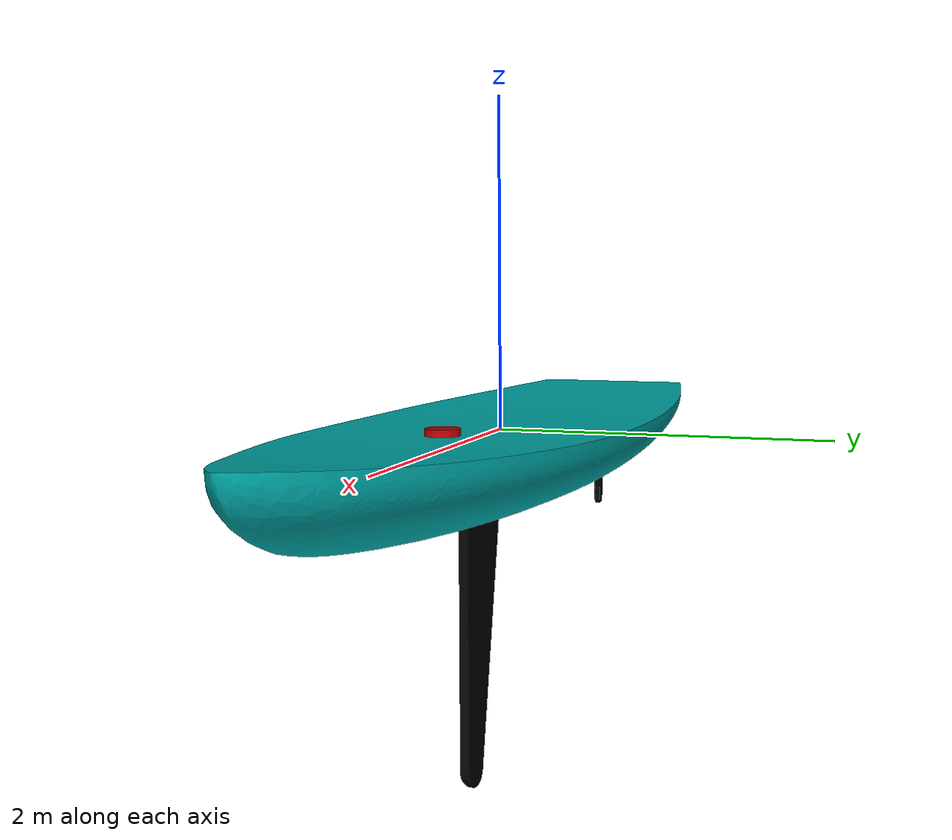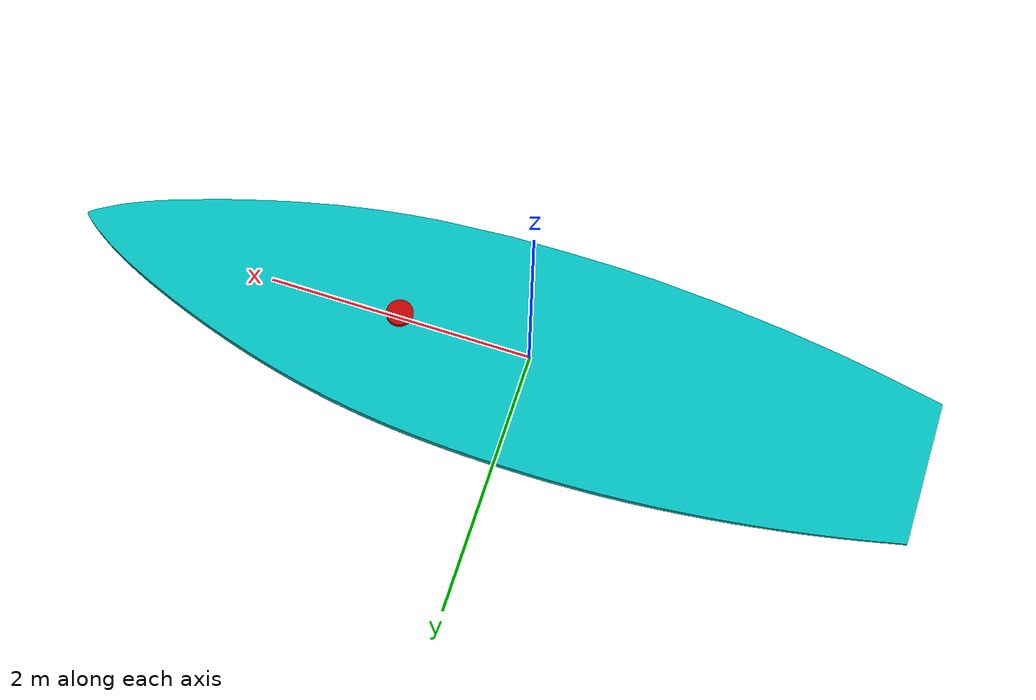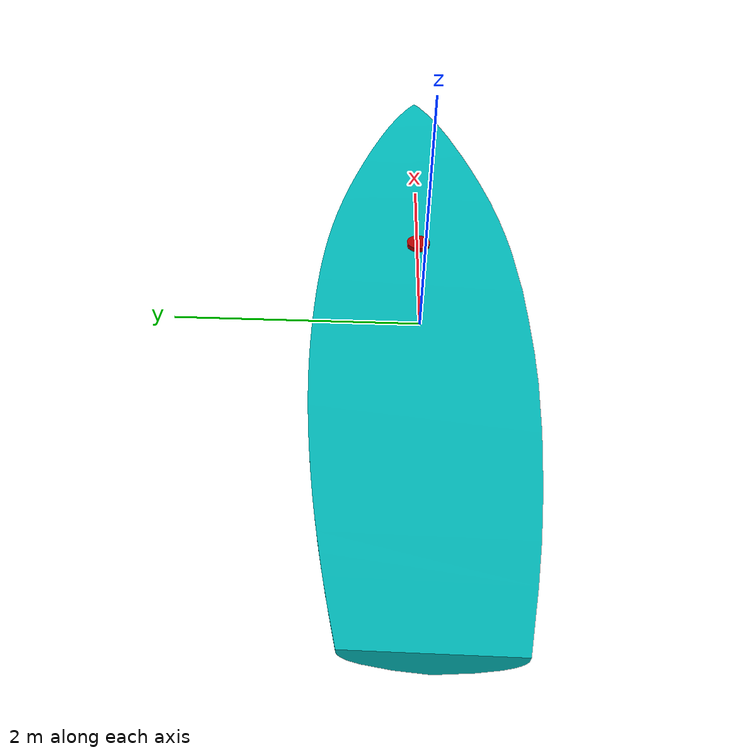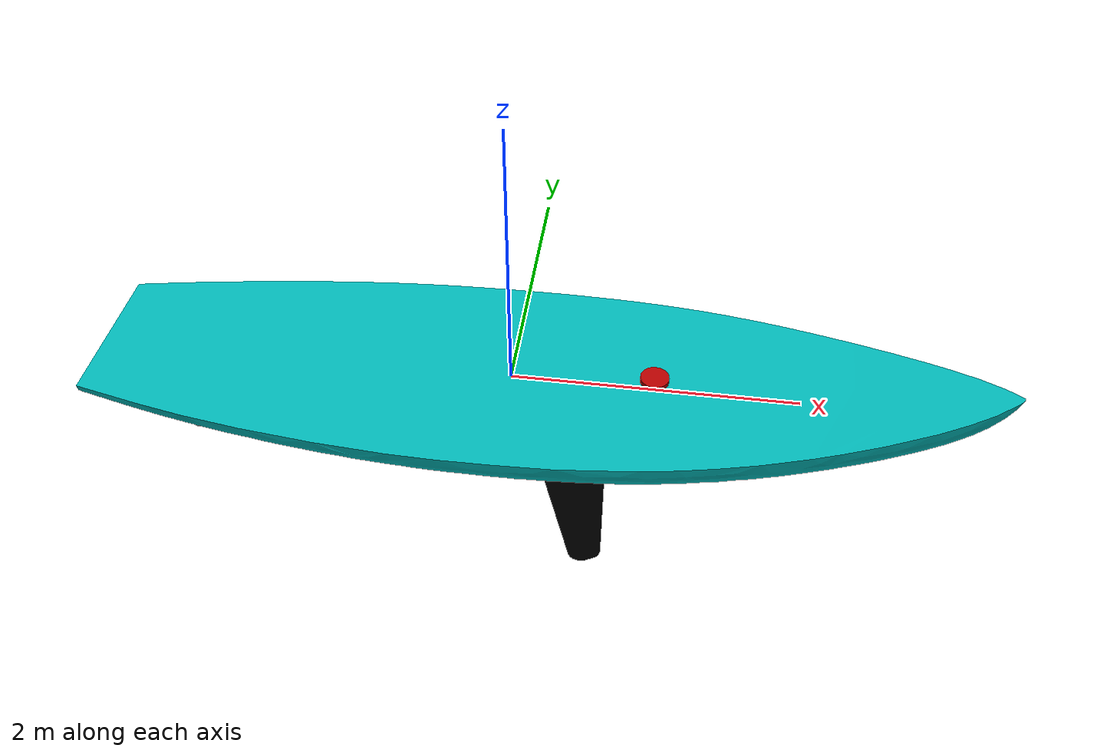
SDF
<?xml version='1.0'?>
<sdf version='1.7'>
  <model name='hull'>
    <enable_wind>true</enable_wind>

    <plugin filename="gz-sim-joint-state-publisher-system"
      name="gz::sim::systems::JointStatePublisher">
    </plugin>

    <link name="base_link">
      <visual name="visual">
        <pose>0 0 0 1.5708 0 0</pose>
        <geometry>
          <mesh>
            <uri>model://maritime_simulation/models/hull/meshes/Hull.stl</uri>
          </mesh>
        </geometry>
        <material>
          <!-- Teal material -->
          <ambient>0 0.5 0.5 1</ambient>
          <diffuse>0 0.7 0.7 1</diffuse>
          <specular>0 0 0 0</specular>
          <emissive>0 0 0 1</emissive>
        </material>
      </visual>
      <collision name="main_hull">
        <geometry>
          <box>
            <size>3 1.5 0.5</size>
          </box>
        </geometry>
      </collision>
      <inertial>
        <pose>0 0 0 0 0 0</pose>
        <mass>2.26</mass>
        <inertia>
          <ixx>120</ixx>
          <ixy>0</ixy>
          <iyy>393</iyy>
          <iyz>0</iyz>
          <izz>446</izz>
        </inertia>
      </inertial>
    </link>

    <link name="fore_fin">
      <visual name="visual">
        <pose>0 0 0 1.5708 0 0</pose>
        <geometry>
          <mesh>
            <uri>model://maritime_simulation/models/hull/meshes/Fore_Fin.stl</uri>
          </mesh>
        </geometry>
        <material>
          <!-- Black material -->
          <ambient>0 0 0 1</ambient>
          <diffuse>0 0 0 1</diffuse>
          <specular>0 0 0 0</specular>
          <emissive>0 0 0 1</emissive>
        </material>
      </visual>
      <collision name="fore_fin">
        <pose>0.5 0 -1.20 0 0 0</pose>
        <geometry>
          <box>
            <size>.5 0.25 1.5</size>
          </box>
        </geometry>
      </collision>
      <inertial>
        <pose>0.5 0 -1 0 0 0</pose>
        <mass>36.8</mass>
        <inertia>
          <ixx>0.88924</ixx>
          <ixy>0</ixy>
          <iyy>0.911125</iyy>
          <iyz>0</iyz>
          <izz>0.078125</izz>
        </inertia>
      </inertial>
    </link>
    <joint name="fore_fin_joint" type="fixed">
      <!-- Joint parameters go here -->
      <parent>base_link</parent>
      <child>fore_fin</child>
      <axis>
        <xyz>0 0 1</xyz>
      </axis>
      <pose>0 0 0 0 0 0</pose>
    </joint>

    <link name="aft_fin">

      <visual name="visual">
        <pose>0 0 0 1.5708 0 0</pose>
        <geometry>
          <mesh>
            <uri>model://maritime_simulation/models/hull/meshes/Aft_Fin.stl</uri>
          </mesh>
        </geometry>
        <material>
          <!-- Black material -->
          <ambient>0 0 0 1</ambient>
          <diffuse>0 0 0 1</diffuse>
          <specular>0 0 0 0</specular>
          <emissive>0 0 0 1</emissive>
        </material>
      </visual>
      <collision name="aft_fin">
        <pose>-2.5 0 -0.5 0 0 0</pose>
        <geometry>
          <box>
            <size>.10 0.10 0.7</size>
          </box>
        </geometry>
      </collision>
      <inertial>
        <pose>-2.5 0 -0.5 0 0 0</pose>
        <mass>2.26</mass>
        <inertia>
          <ixx>0.88924</ixx>
          <ixy>0</ixy>
          <iyy>0.911125</iyy>
          <iyz>0</iyz>
          <izz>0.078125</izz>
        </inertia>
      </inertial>
    </link>

    <joint name="aft_fin_joint" type="fixed">
      <!-- Joint parameters go here -->
      <parent>base_link</parent>
      <child>aft_fin</child>
      <axis>
        <xyz>0 0 1</xyz>
      </axis>
      <pose>0 0 0 0 0 0</pose>
    </joint>

    <!-- Sensors -->
    <link name="imu_link">
      <inertial>
        <pose>0 0 0 0 0 0</pose>
        <mass>0.15</mass>
        <inertia>
          <ixx>0.00001</ixx>
          <ixy>0</ixy>
          <ixz>0</ixz>
          <iyy>0.00002</iyy>
          <iyz>0</iyz>
          <izz>0.00002</izz>
        </inertia>
      </inertial>
      <sensor name="imu_sensor" type="imu">
        <pose>0 0 0 3.141593 0 0</pose>
        <always_on>1</always_on>
        <update_rate>1000.0</update_rate>
      </sensor>
    </link>
    <joint name="imu_joint" type="revolute">
      <child>imu_link</child>
      <parent>base_link</parent>
      <axis>
        <xyz>0 0 1</xyz>
        <limit>
          <lower>0</lower>
          <upper>0</upper>
          <effort>0</effort>
          <velocity>0</velocity>
        </limit>
        <dynamics>
          <damping>1.0</damping>
        </dynamics>
      </axis>
    </joint>

    <frame name="lidar_frame" attached_to='left_lidar'>
      <pose>0.8 0 0.5 0 0 0</pose>
    </frame>

    <link name="left_lidar">
      <visual name="visual">
        <pose>1 0 0.1 0 0 0</pose>
        <geometry>
              <cylinder>
                <radius>0.1</radius>
                <length>0.04</length>
              </cylinder>
        </geometry>
        <material>
          <!-- Red material -->
          <ambient>0.5 0 0 1</ambient>
          <diffuse>0.7 0 0 1</diffuse>
          <specular>0 0 0 0</specular>
          <emissive>0.5 0 0 1</emissive>
        </material>

      </visual>
      <collision name="left_lidar">
        <geometry>
          <cylinder>
            <radius>0.05</radius>
            <length>0.04</length>
          </cylinder>
        </geometry>
      </collision>
      <inertial>
        <pose>0 0 0 0 0 0</pose>
        <mass>0.1</mass>
        <inertia>
          <ixx>0.00001</ixx>
          <ixy>0</ixy>
          <ixz>0</ixz>
          <iyy>0.00002</iyy>
          <iyz>0</iyz>
          <izz>0.00002</izz>
        </inertia>
      </inertial>

      <sensor name="gpu_lidar" type="gpu_ray">
        <pose> 0 0 0 0 0 0 </pose>
        <topic>/lidar/bow/port</topic>
        <visualize>false</visualize>
        <update_rate>10</update_rate>
        <ray>
          <scan>
            <horizontal>
                <samples>360</samples>
                <min_angle>-3.14</min_angle>
                <max_angle>3.14</max_angle>
            </horizontal>
            <vertical>
                <samples>1</samples>
                <resolution>0.01</resolution>
                <min_angle>0</min_angle>
                <max_angle>0</max_angle>
            </vertical>
          </scan>
          <range>
              <min>0.3</min>
              <max>12</max>
          </range>
          <noise>
            <type>gaussian</type>
            <mean>0.0</mean>
            <stddev>0.01</stddev>
          </noise>
        </ray>
        <always_on>1</always_on>
      </sensor>
    </link>

    <joint name="laser_joint" type="fixed">
      <parent>base_link</parent>
      <child>left_lidar</child>
      <origin xyz="0.1 0 0.175" rpy="0 0 0"/>
    </joint>

    <!-- Hydrodynamics plugin -->

    <plugin
        filename="gz-waves1-hydrodynamics-system"
        name="gz::sim::systems::Hydrodynamics">

        <enable>hull::base_link</enable>

        <hydrodynamics>
          <damping_on>1</damping_on>
          <viscous_drag_on>1</viscous_drag_on>
          <pressure_drag_on>1</pressure_drag_on>

          <!-- Linear and Angular Damping -->
          <cDampL1>1.0E-6</cDampL1>
          <cDampL2>1.0E-6</cDampL2>
          <cDampR1>1.0E-6</cDampR1>
          <cDampR2>1.0E-6</cDampR2>

          <!-- 'Pressure' Drag -->
          <cPDrag1>1.0E+2</cPDrag1>
          <cPDrag2>1.0E+2</cPDrag2>
          <fPDrag>0.4</fPDrag>
          <cSDrag1>1.0E+2</cSDrag1>
          <cSDrag2>1.0E+2</cSDrag2>
          <fSDrag>0.4</fSDrag>
          <vRDrag>1.0</vRDrag>
        </hydrodynamics>
    </plugin>

    <!-- ArduPilot plugin -->
    <plugin name="ArduPilotPlugin" filename="ArduPilotPlugin">
      <fdm_addr>127.0.0.1</fdm_addr>
      <fdm_port_in>9002</fdm_port_in>
      <connectionTimeoutMaxCount>5</connectionTimeoutMaxCount>
      <lock_step>1</lock_step>
      <modelXYZToAirplaneXForwardZDown>0 0 0 3.141593 0 0</modelXYZToAirplaneXForwardZDown>
      <gazeboXYZToNED>0 0 0 3.141593 0 1.57079632</gazeboXYZToNED>
      <imuName>imu_sensor</imuName>
    </plugin>

  </model>
</sdf>
